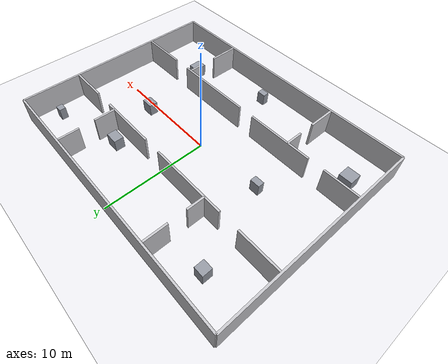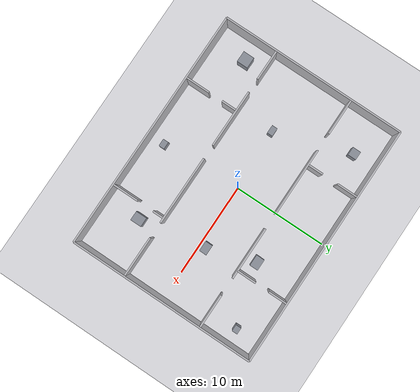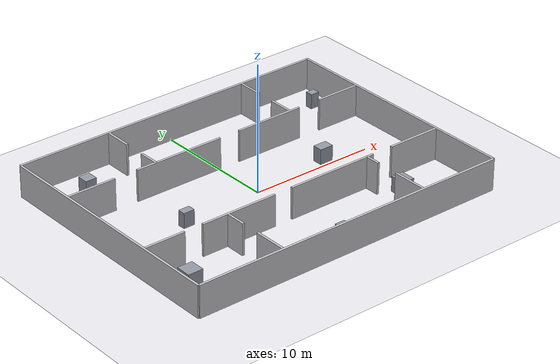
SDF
<?xml version="1.0"?>
<sdf version="1.9"><world name="new_room_world">
<plugin filename="gz-sim-physics-system" name="gz::sim::systems::Physics"/><plugin filename="gz-sim-user-commands-system" name="gz::sim::systems::UserCommands"/><plugin filename="gz-sim-scene-broadcaster-system" name="gz::sim::systems::SceneBroadcaster"/><plugin filename="gz-sim-sensors-system" name="gz::sim::systems::Sensors"><render_engine>ogre2</render_engine></plugin><plugin filename="gz-sim-imu-system" name="gz::sim::systems::Imu"/>
<physics name="new_room_realtime" type="ignored"><max_step_size>0.001</max_step_size><real_time_factor>1</real_time_factor></physics><gravity>0 0 -9.8</gravity><scene><ambient>0.85 0.85 0.87 1</ambient><background>0.68 0.68 0.71 1</background><shadows>false</shadows></scene><light name="sun" type="directional"><cast_shadows>false</cast_shadows><pose>0 0 10 0 0 0</pose><diffuse>0.95 0.95 0.95 1</diffuse><direction>-0.3 0.2 -1</direction></light>
<model name="new_room_ground"><static>true</static><link name="ground_link"><collision name="ground_collision"><geometry><plane><normal>0 0 1</normal><size>40 32</size></plane></geometry></collision><visual name="ground_visual"><geometry><plane><normal>0 0 1</normal><size>40 32</size></plane></geometry><material><ambient>0.92 0.92 0.94 1</ambient><diffuse>0.92 0.92 0.94 1</diffuse></material></visual></link></model>
<model name="mini_hospital_structure"><static>true</static><link name="structure">
<collision name="mx048_c000"><pose>0 10 1.25 0 0 0</pose><geometry><box><size>26 0.18 2.5</size></box></geometry></collision><visual name="mx048_v000"><pose>0 10 1.25 0 0 0</pose><geometry><box><size>26 0.18 2.5</size></box></geometry><material><ambient>0.78 0.78 0.80 1</ambient><diffuse>0.78 0.78 0.80 1</diffuse></material></visual>
<collision name="mx048_c001"><pose>0 -10 1.25 0 0 0</pose><geometry><box><size>26 0.18 2.5</size></box></geometry></collision><visual name="mx048_v001"><pose>0 -10 1.25 0 0 0</pose><geometry><box><size>26 0.18 2.5</size></box></geometry><material><ambient>0.78 0.78 0.80 1</ambient><diffuse>0.78 0.78 0.80 1</diffuse></material></visual>
<collision name="mx048_c002"><pose>-13 0 1.25 0 0 0</pose><geometry><box><size>0.18 20 2.5</size></box></geometry></collision><visual name="mx048_v002"><pose>-13 0 1.25 0 0 0</pose><geometry><box><size>0.18 20 2.5</size></box></geometry><material><ambient>0.78 0.78 0.80 1</ambient><diffuse>0.78 0.78 0.80 1</diffuse></material></visual>
<collision name="mx048_c003"><pose>13 0 1.25 0 0 0</pose><geometry><box><size>0.18 20 2.5</size></box></geometry></collision><visual name="mx048_v003"><pose>13 0 1.25 0 0 0</pose><geometry><box><size>0.18 20 2.5</size></box></geometry><material><ambient>0.78 0.78 0.80 1</ambient><diffuse>0.78 0.78 0.80 1</diffuse></material></visual>
<collision name="mx048_c004"><pose>-10.98 4.4 1.25 0 0 0</pose><geometry><box><size>3.86 0.18 2.5</size></box></geometry></collision><visual name="mx048_v004"><pose>-10.98 4.4 1.25 0 0 0</pose><geometry><box><size>3.86 0.18 2.5</size></box></geometry><material><ambient>0.78 0.78 0.80 1</ambient><diffuse>0.78 0.78 0.80 1</diffuse></material></visual>
<collision name="mx048_c005"><pose>-3.5 4.4 1.25 0 0 0</pose><geometry><box><size>7.3 0.18 2.5</size></box></geometry></collision><visual name="mx048_v005"><pose>-3.5 4.4 1.25 0 0 0</pose><geometry><box><size>7.3 0.18 2.5</size></box></geometry><material><ambient>0.78 0.78 0.80 1</ambient><diffuse>0.78 0.78 0.80 1</diffuse></material></visual>
<collision name="mx048_c006"><pose>4.65 4.4 1.25 0 0 0</pose><geometry><box><size>5.6 0.18 2.5</size></box></geometry></collision><visual name="mx048_v006"><pose>4.65 4.4 1.25 0 0 0</pose><geometry><box><size>5.6 0.18 2.5</size></box></geometry><material><ambient>0.78 0.78 0.80 1</ambient><diffuse>0.78 0.78 0.80 1</diffuse></material></visual>
<collision name="mx048_c007"><pose>11.13 4.4 1.25 0 0 0</pose><geometry><box><size>3.56 0.18 2.5</size></box></geometry></collision><visual name="mx048_v007"><pose>11.13 4.4 1.25 0 0 0</pose><geometry><box><size>3.56 0.18 2.5</size></box></geometry><material><ambient>0.78 0.78 0.80 1</ambient><diffuse>0.78 0.78 0.80 1</diffuse></material></visual>
<collision name="mx048_c008"><pose>-11.28 -4.2 1.25 0 0 0</pose><geometry><box><size>3.26 0.18 2.5</size></box></geometry></collision><visual name="mx048_v008"><pose>-11.28 -4.2 1.25 0 0 0</pose><geometry><box><size>3.26 0.18 2.5</size></box></geometry><material><ambient>0.78 0.78 0.80 1</ambient><diffuse>0.78 0.78 0.80 1</diffuse></material></visual>
<collision name="mx048_c009"><pose>-5.05 -4.2 1.25 0 0 0</pose><geometry><box><size>6.2 0.18 2.5</size></box></geometry></collision><visual name="mx048_v009"><pose>-5.05 -4.2 1.25 0 0 0</pose><geometry><box><size>6.2 0.18 2.5</size></box></geometry><material><ambient>0.78 0.78 0.80 1</ambient><diffuse>0.78 0.78 0.80 1</diffuse></material></visual>
<collision name="mx048_c010"><pose>3.25 -4.2 1.25 0 0 0</pose><geometry><box><size>7.4 0.18 2.5</size></box></geometry></collision><visual name="mx048_v010"><pose>3.25 -4.2 1.25 0 0 0</pose><geometry><box><size>7.4 0.18 2.5</size></box></geometry><material><ambient>0.78 0.78 0.80 1</ambient><diffuse>0.78 0.78 0.80 1</diffuse></material></visual>
<collision name="mx048_c011"><pose>10.78 -4.2 1.25 0 0 0</pose><geometry><box><size>4.26 0.18 2.5</size></box></geometry></collision><visual name="mx048_v011"><pose>10.78 -4.2 1.25 0 0 0</pose><geometry><box><size>4.26 0.18 2.5</size></box></geometry><material><ambient>0.78 0.78 0.80 1</ambient><diffuse>0.78 0.78 0.80 1</diffuse></material></visual>
<collision name="mx048_c012"><pose>-5.5 5.225 1.25 0 0 0</pose><geometry><box><size>0.18 1.65 2.5</size></box></geometry></collision><visual name="mx048_v012"><pose>-5.5 5.225 1.25 0 0 0</pose><geometry><box><size>0.18 1.65 2.5</size></box></geometry><material><ambient>0.78 0.78 0.80 1</ambient><diffuse>0.78 0.78 0.80 1</diffuse></material></visual>
<collision name="mx048_c013"><pose>-5.5 8.83 1.25 0 0 0</pose><geometry><box><size>0.18 2.16 2.5</size></box></geometry></collision><visual name="mx048_v013"><pose>-5.5 8.83 1.25 0 0 0</pose><geometry><box><size>0.18 2.16 2.5</size></box></geometry><material><ambient>0.78 0.78 0.80 1</ambient><diffuse>0.78 0.78 0.80 1</diffuse></material></visual>
<collision name="mx048_c014"><pose>6.6 5.425 1.25 0 0 0</pose><geometry><box><size>0.18 2.05 2.5</size></box></geometry></collision><visual name="mx048_v014"><pose>6.6 5.425 1.25 0 0 0</pose><geometry><box><size>0.18 2.05 2.5</size></box></geometry><material><ambient>0.78 0.78 0.80 1</ambient><diffuse>0.78 0.78 0.80 1</diffuse></material></visual>
<collision name="mx048_c015"><pose>6.6 8.93 1.25 0 0 0</pose><geometry><box><size>0.18 1.96 2.5</size></box></geometry></collision><visual name="mx048_v015"><pose>6.6 8.93 1.25 0 0 0</pose><geometry><box><size>0.18 1.96 2.5</size></box></geometry><material><ambient>0.78 0.78 0.80 1</ambient><diffuse>0.78 0.78 0.80 1</diffuse></material></visual>
<collision name="mx048_c016"><pose>-6 -8.63 1.25 0 0 0</pose><geometry><box><size>0.18 2.56 2.5</size></box></geometry></collision><visual name="mx048_v016"><pose>-6 -8.63 1.25 0 0 0</pose><geometry><box><size>0.18 2.56 2.5</size></box></geometry><material><ambient>0.78 0.78 0.80 1</ambient><diffuse>0.78 0.78 0.80 1</diffuse></material></visual>
<collision name="mx048_c017"><pose>-6 -5.025 1.25 0 0 0</pose><geometry><box><size>0.18 1.65 2.5</size></box></geometry></collision><visual name="mx048_v017"><pose>-6 -5.025 1.25 0 0 0</pose><geometry><box><size>0.18 1.65 2.5</size></box></geometry><material><ambient>0.78 0.78 0.80 1</ambient><diffuse>0.78 0.78 0.80 1</diffuse></material></visual>
<collision name="mx048_c018"><pose>6.4 -8.555 1.25 0 0 0</pose><geometry><box><size>0.18 2.71 2.5</size></box></geometry></collision><visual name="mx048_v018"><pose>6.4 -8.555 1.25 0 0 0</pose><geometry><box><size>0.18 2.71 2.5</size></box></geometry><material><ambient>0.78 0.78 0.80 1</ambient><diffuse>0.78 0.78 0.80 1</diffuse></material></visual>
<collision name="mx048_c019"><pose>6.4 -4.8 1.25 0 0 0</pose><geometry><box><size>0.18 1.2 2.5</size></box></geometry></collision><visual name="mx048_v019"><pose>6.4 -4.8 1.25 0 0 0</pose><geometry><box><size>0.18 1.2 2.5</size></box></geometry><material><ambient>0.78 0.78 0.80 1</ambient><diffuse>0.78 0.78 0.80 1</diffuse></material></visual>
<collision name="mx048_c020"><pose>-9.1 7.6 0.6 0 0 0</pose><geometry><box><size>0.9 0.9 1.2</size></box></geometry></collision><visual name="mx048_v020"><pose>-9.1 7.6 0.6 0 0 0</pose><geometry><box><size>0.9 0.9 1.2</size></box></geometry><material><ambient>0.58 0.60 0.64 1</ambient><diffuse>0.58 0.60 0.64 1</diffuse></material></visual>
<collision name="mx048_c021"><pose>5 5.6 0.6 0 0 0</pose><geometry><box><size>1.2 0.9 1.2</size></box></geometry></collision><visual name="mx048_v021"><pose>5 5.6 0.6 0 0 0</pose><geometry><box><size>1.2 0.9 1.2</size></box></geometry><material><ambient>0.58 0.60 0.64 1</ambient><diffuse>0.58 0.60 0.64 1</diffuse></material></visual>
<collision name="mx048_c022"><pose>11.4 7.5 0.6 0 0 0</pose><geometry><box><size>0.7 0.6 1.2</size></box></geometry></collision><visual name="mx048_v022"><pose>11.4 7.5 0.6 0 0 0</pose><geometry><box><size>0.7 0.6 1.2</size></box></geometry><material><ambient>0.58 0.60 0.64 1</ambient><diffuse>0.58 0.60 0.64 1</diffuse></material></visual>
<collision name="mx048_c023"><pose>-10.9 -6.4 0.6 0 0 0</pose><geometry><box><size>1.2 1.2 1.2</size></box></geometry></collision><visual name="mx048_v023"><pose>-10.9 -6.4 0.6 0 0 0</pose><geometry><box><size>1.2 1.2 1.2</size></box></geometry><material><ambient>0.58 0.60 0.64 1</ambient><diffuse>0.58 0.60 0.64 1</diffuse></material></visual>
<collision name="mx048_c024"><pose>0.5 -8.4 0.6 0 0 0</pose><geometry><box><size>0.8 0.6 1.2</size></box></geometry></collision><visual name="mx048_v024"><pose>0.5 -8.4 0.6 0 0 0</pose><geometry><box><size>0.8 0.6 1.2</size></box></geometry><material><ambient>0.58 0.60 0.64 1</ambient><diffuse>0.58 0.60 0.64 1</diffuse></material></visual>
<collision name="mx048_c025"><pose>7.9 -6.3 0.6 0 0 0</pose><geometry><box><size>1 1.2 1.2</size></box></geometry></collision><visual name="mx048_v025"><pose>7.9 -6.3 0.6 0 0 0</pose><geometry><box><size>1 1.2 1.2</size></box></geometry><material><ambient>0.58 0.60 0.64 1</ambient><diffuse>0.58 0.60 0.64 1</diffuse></material></visual>
<collision name="mx048_c026"><pose>-6.5 -0.3 0.6 0 0 0</pose><geometry><box><size>0.9 0.6 1.2</size></box></geometry></collision><visual name="mx048_v026"><pose>-6.5 -0.3 0.6 0 0 0</pose><geometry><box><size>0.9 0.6 1.2</size></box></geometry><material><ambient>0.58 0.60 0.64 1</ambient><diffuse>0.58 0.60 0.64 1</diffuse></material></visual>
<collision name="mx048_c027"><pose>6.6 0.7 0.6 0 0 0</pose><geometry><box><size>1.1 0.8 1.2</size></box></geometry></collision><visual name="mx048_v027"><pose>6.6 0.7 0.6 0 0 0</pose><geometry><box><size>1.1 0.8 1.2</size></box></geometry><material><ambient>0.58 0.60 0.64 1</ambient><diffuse>0.58 0.60 0.64 1</diffuse></material></visual>
</link></model></world></sdf>
